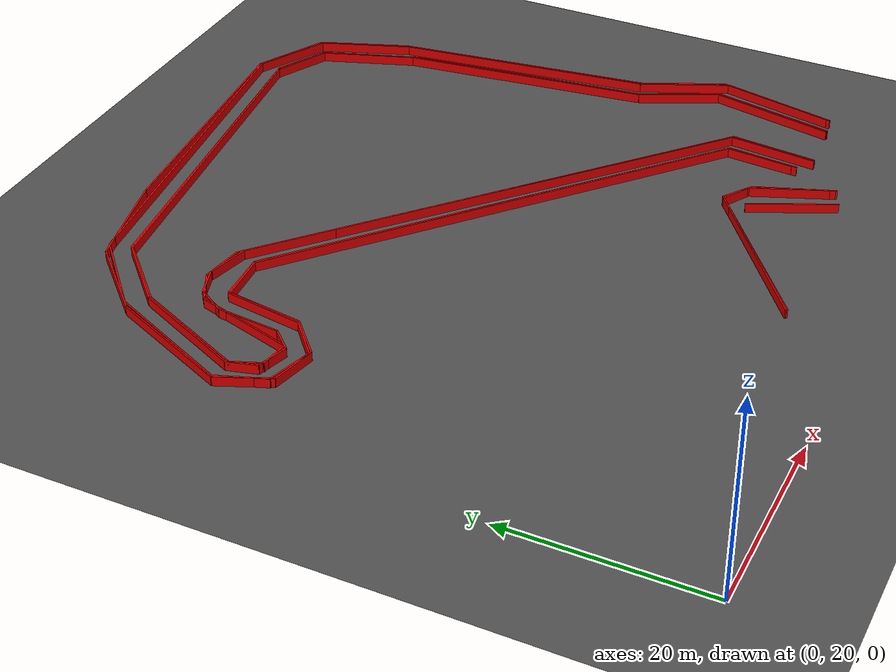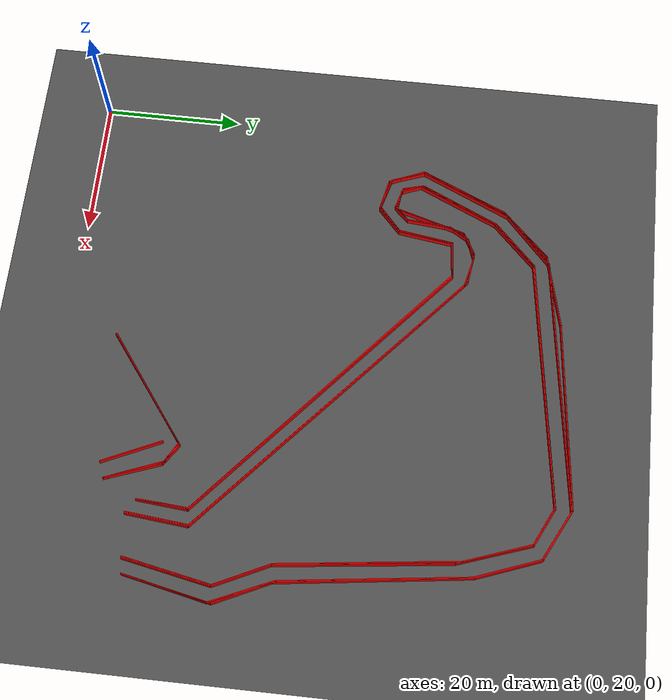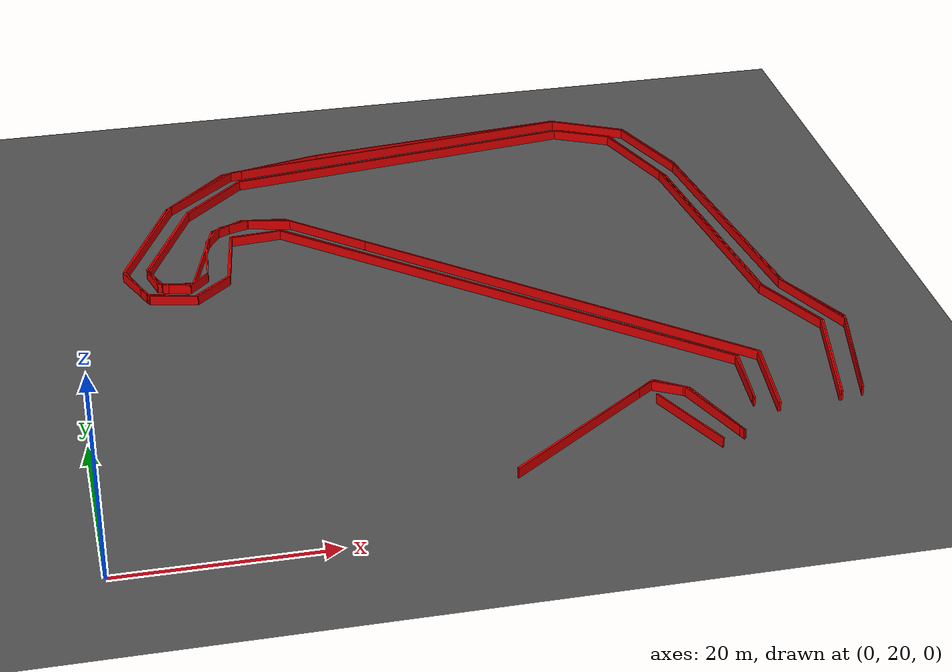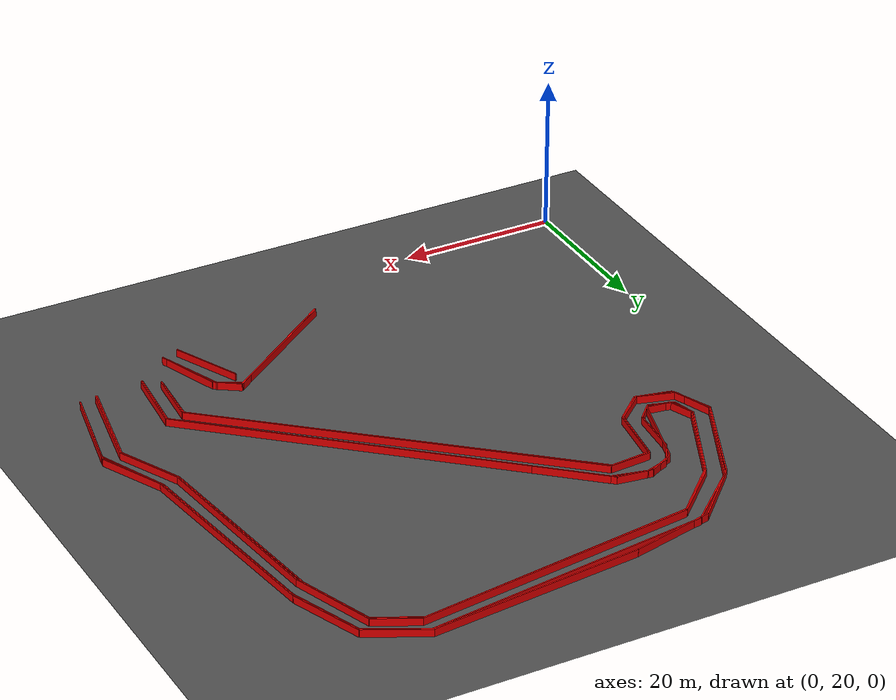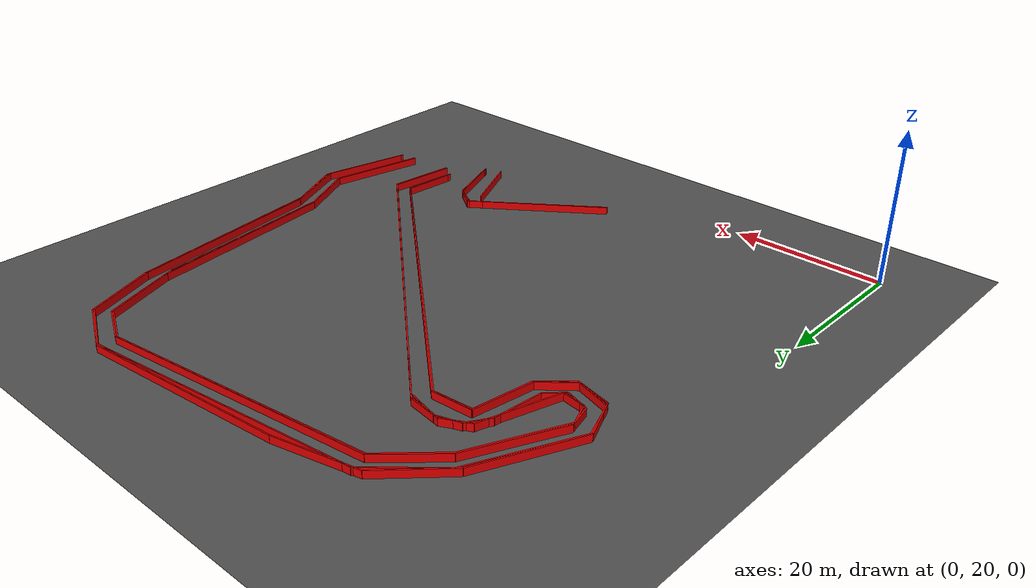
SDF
<sdf version="1.6">
 <world name="track_world">
  <model name="ground_plane">
   <static>true</static>
   <link name="link">
    <collision name="collision">
     <geometry><plane><normal>0 0 1</normal><size>1000 1000</size></plane></geometry>
    </collision>
    <visual name="visual">
     <geometry><plane><normal>0 0 1</normal><size>1000 1000</size></plane></geometry>
     <material><ambient>0.3 0.3 0.3 1</ambient><diffuse>0.3 0.3 0.3 1</diffuse></material>
    </visual>
   </link>
  </model>
  <model name="wall_0">
   <static>true</static>
   <pose>42.31821860208427 92.56603608975206 0.5 0 0 -3.037451008844692</pose>
   <link name="link">
    <visual name="visual">
     <geometry><box><size>27.449195399209803 0.15 1.0</size></box></geometry>
     <material><ambient>1 0 0 1</ambient><diffuse>1 0 0 1</diffuse></material>
    </visual>
    <collision name="collision">
     <geometry><box><size>27.449195399209803 0.15 1.0</size></box></geometry>
    </collision>
   </link>
  </model>
  <model name="wall_1">
   <static>true</static>
   <pose>23.308138602084274 89.86683608975206 0.5 0 0 -2.908497981060588</pose>
   <link name="link">
    <visual name="visual">
     <geometry><box><size>11.017638617417065 0.15 1.0</size></box></geometry>
     <material><ambient>1 0 0 1</ambient><diffuse>1 0 0 1</diffuse></material>
    </visual>
    <collision name="collision">
     <geometry><box><size>11.017638617417065 0.15 1.0</size></box></geometry>
    </collision>
   </link>
  </model>
  <model name="wall_2">
   <static>true</static>
   <pose>14.632138602084279 85.23963608975205 0.5 0 0 -2.350414207748683</pose>
   <link name="link">
    <visual name="visual">
     <geometry><box><size>9.434206574800024 0.15 1.0</size></box></geometry>
     <material><ambient>1 0 0 1</ambient><diffuse>1 0 0 1</diffuse></material>
    </visual>
    <collision name="collision">
     <geometry><box><size>9.434206574800024 0.15 1.0</size></box></geometry>
    </collision>
   </link>
  </model>
  <model name="wall_3">
   <static>true</static>
   <pose>8.539658602084277 75.63819608975206 0.5 0 0 -1.9890206563741262</pose>
   <link name="link">
    <visual name="visual">
     <geometry><box><size>13.671790446141276 0.15 1.0</size></box></geometry>
     <material><ambient>1 0 0 1</ambient><diffuse>1 0 0 1</diffuse></material>
    </visual>
    <collision name="collision">
     <geometry><box><size>13.671790446141276 0.15 1.0</size></box></geometry>
    </collision>
   </link>
  </model>
  <model name="wall_4">
   <static>true</static>
   <pose>6.843018602084275 66.80795608975205 0.5 0 0 -1.1749458854574806</pose>
   <link name="link">
    <visual name="visual">
     <geometry><box><size>5.600101603649705 0.15 1.0</size></box></geometry>
     <material><ambient>1 0 0 1</ambient><diffuse>1 0 0 1</diffuse></material>
    </visual>
    <collision name="collision">
     <geometry><box><size>5.600101603649705 0.15 1.0</size></box></geometry>
    </collision>
   </link>
  </model>
  <model name="wall_5">
   <static>true</static>
   <pose>10.236298602084275 63.72315608975206 0.5 0 0 -0.21336864215180842</pose>
   <link name="link">
    <visual name="visual">
     <geometry><box><size>4.734565069106139 0.15 1.0</size></box></geometry>
     <material><ambient>1 0 0 1</ambient><diffuse>1 0 0 1</diffuse></material>
    </visual>
    <collision name="collision">
     <geometry><box><size>4.734565069106139 0.15 1.0</size></box></geometry>
    </collision>
   </link>
  </model>
  <model name="wall_6">
   <static>true</static>
   <pose>14.323658602084276 64.84139608975207 0.5 0 0 0.739974883975872</pose>
   <link name="link">
    <visual name="visual">
     <geometry><box><size>4.803777500259563 0.15 1.0</size></box></geometry>
     <material><ambient>1 0 0 1</ambient><diffuse>1 0 0 1</diffuse></material>
    </visual>
    <collision name="collision">
     <geometry><box><size>4.803777500259563 0.15 1.0</size></box></geometry>
    </collision>
   </link>
  </model>
  <model name="wall_7">
   <static>true</static>
   <pose>16.675818602084274 70.43259608975205 0.5 0 0 1.4261818875749566</pose>
   <link name="link">
    <visual name="visual">
     <geometry><box><size>8.027151071806234 0.15 1.0</size></box></geometry>
     <material><ambient>1 0 0 1</ambient><diffuse>1 0 0 1</diffuse></material>
    </visual>
    <collision name="collision">
     <geometry><box><size>8.027151071806234 0.15 1.0</size></box></geometry>
    </collision>
   </link>
  </model>
  <model name="wall_8">
   <static>true</static>
   <pose>19.837738602084272 74.63563608975207 0.5 0 0 0.08931399299322305</pose>
   <link name="link">
    <visual name="visual">
     <geometry><box><size>5.187717432551623 0.15 1.0</size></box></geometry>
     <material><ambient>1 0 0 1</ambient><diffuse>1 0 0 1</diffuse></material>
    </visual>
    <collision name="collision">
     <geometry><box><size>5.187717432551623 0.15 1.0</size></box></geometry>
    </collision>
   </link>
  </model>
  <model name="wall_9">
   <static>true</static>
   <pose>41.81693860208427 58.09339608975206 0.5 0 0 -0.7130300929492385</pose>
   <link name="link">
    <visual name="visual">
     <geometry><box><size>51.285321862006484 0.15 1.0</size></box></geometry>
     <material><ambient>1 0 0 1</ambient><diffuse>1 0 0 1</diffuse></material>
    </visual>
    <collision name="collision">
     <geometry><box><size>51.285321862006484 0.15 1.0</size></box></geometry>
    </collision>
   </link>
  </model>
  <model name="wall_10">
   <static>true</static>
   <pose>60.94269860208427 37.84939608975206 0.5 0 0 -1.6484178355322898</pose>
   <link name="link">
    <visual name="visual">
     <geometry><box><size>6.9617621236006 0.15 1.0</size></box></geometry>
     <material><ambient>1 0 0 1</ambient><diffuse>1 0 0 1</diffuse></material>
    </visual>
    <collision name="collision"><geometry><box><size>6.9617621236006 0.15 1.0</size></box></geometry></collision>
   </link>
  </model>
  <model name="wall_12">
   <static>true</static>
   <pose>56.70109860208427 32.87515608975206 0.5 0 0 1.9219501693955425</pose>
   <link name="link">
    <visual name="visual">
     <geometry><box><size>8.295330626804462 0.15 1.0</size></box></geometry>
     <material><ambient>1 0 0 1</ambient><diffuse>1 0 0 1</diffuse></material>
    </visual>
    <collision name="collision">
     <geometry><box><size>8.295330626804462 0.15 1.0</size></box></geometry>
    </collision>
   </link>
  </model>
  <model name="wall_13">
   <static>true</static>
   <pose>53.809098602084276 37.77227608975206 0.5 0 0 2.5415424401880418</pose>
   <link name="link">
    <visual name="visual">
     <geometry><box><size>3.5508714603601135 0.15 1.0</size></box></geometry>
     <material><ambient>1 0 0 1</ambient><diffuse>1 0 0 1</diffuse></material>
    </visual>
    <collision name="collision">
     <geometry><box><size>3.5508714603601135 0.15 1.0</size></box></geometry>
    </collision>
   </link>
  </model>
  <model name="wall_14">
   <static>true</static>
   <pose>44.55469860208427 33.02939608975206 0.5 0 0 -2.506059503658031</pose>
   <link name="link">
    <visual name="visual">
     <geometry><box><size>19.357734492238496 0.15 1.0</size></box></geometry>
     <material><ambient>1 0 0 1</ambient><diffuse>1 0 0 1</diffuse></material>
    </visual>
    <collision name="collision">
     <geometry><box><size>19.357734492238496 0.15 1.0</size></box></geometry>
    </collision>
   </link>
  </model>
  <model name="wall_31">
   <static>true</static>
   <pose>72.47213860208427 40.04731608975206 0.5 0 0 1.3601325468103365</pose>
   <link name="link">
    <visual name="visual">
     <geometry><box><size>12.539294615439891 0.15 1.0</size></box></geometry>
     <material><ambient>1 0 0 1</ambient><diffuse>1 0 0 1</diffuse></material>
    </visual>
    <collision name="collision">
     <geometry><box><size>12.539294615439891 0.15 1.0</size></box></geometry>
    </collision>
   </link>
  </model>
  <model name="wall_32">
   <static>true</static>
   <pose>71.93229860208427 50.11147608975206 0.5 0 0 2.0106389096106305</pose>
   <link name="link">
    <visual name="visual">
     <geometry><box><size>8.693719505206039 0.15 1.0</size></box></geometry>
     <material><ambient>1 0 0 1</ambient><diffuse>1 0 0 1</diffuse></material>
    </visual>
    <collision name="collision">
     <geometry><box><size>8.693719505206039 0.15 1.0</size></box></geometry>
    </collision>
   </link>
  </model>
  <model name="wall_33">
   <static>true</static>
   <pose>68.34621860208428 67.61771608975207 0.5 0 0 1.697947539150035</pose>
   <link name="link">
    <visual name="visual">
     <geometry><box><size>27.36717052049043 0.15 1.0</size></box></geometry>
     <material><ambient>1 0 0 1</ambient><diffuse>1 0 0 1</diffuse></material>
    </visual>
    <collision name="collision">
     <geometry><box><size>27.36717052049043 0.15 1.0</size></box></geometry>
    </collision>
   </link>
  </model>
  <model name="wall_34">
   <static>true</static>
   <pose>64.91437860208427 85.74091608975206 0.5 0 0 1.9277082631465672</pose>
   <link name="link">
    <visual name="visual">
     <geometry><box><size>9.712222257753359 0.15 1.0</size></box></geometry>
     <material><ambient>1 0 0 1</ambient><diffuse>1 0 0 1</diffuse></material>
    </visual>
    <collision name="collision">
     <geometry><box><size>9.712222257753359 0.15 1.0</size></box></geometry>
    </collision>
   </link>
  </model>
  <model name="wall_35">
   <static>true</static>
   <pose>59.593098602084275 92.14187608975206 0.5 0 0 2.6694706711860157</pose>
   <link name="link">
    <visual name="visual">
     <geometry><box><size>8.13972282181648 0.15 1.0</size></box></geometry>
     <material><ambient>1 0 0 1</ambient><diffuse>1 0 0 1</diffuse></material>
    </visual>
    <collision name="collision"><geometry><box><size>8.13972282181648 0.15 1.0</size></box></geometry></collision>
   </link>
  </model>
  <model name="wall_36">
   <static>true</static>
   <pose>59.59309860208427 91.98763608975206 0.5 0 0 -0.4808872801953336</pose>
   <link name="link">
    <visual name="visual">
     <geometry><box><size>8.002663287881091 0.15 1.0</size></box></geometry>
     <material><ambient>1 0 0 1</ambient><diffuse>1 0 0 1</diffuse></material>
    </visual>
    <collision name="collision">
     <geometry><box><size>8.002663287881091 0.15 1.0</size></box></geometry>
    </collision>
   </link>
  </model>
  <model name="wall_37">
   <static>true</static>
   <pose>64.83725860208426 85.54811608975206 0.5 0 0 -1.2166381699386704</pose>
   <link name="link">
    <visual name="visual">
     <geometry><box><size>9.784519270602948 0.15 1.0</size></box></geometry>
     <material><ambient>1 0 0 1</ambient><diffuse>1 0 0 1</diffuse></material>
    </visual>
    <collision name="collision">
     <geometry><box><size>9.784519270602948 0.15 1.0</size></box></geometry>
    </collision>
   </link>
  </model>
  <model name="wall_38">
   <static>true</static>
   <pose>68.19197860208426 67.69483608975204 0.5 0 0 -1.4464413322481353</pose>
   <link name="link">
    <visual name="visual">
     <geometry><box><size>26.735736654597705 0.15 1.0</size></box></geometry>
     <material><ambient>1 0 0 1</ambient><diffuse>1 0 0 1</diffuse></material>
    </visual>
    <collision name="collision">
     <geometry><box><size>26.735736654597705 0.15 1.0</size></box></geometry>
    </collision>
   </link>
  </model>
  <model name="wall_39">
   <static>true</static>
   <pose>71.77805860208427 50.03435608975206 0.5 0 0 -1.1574659222555665</pose>
   <link name="link">
    <visual name="visual">
     <geometry><box><size>9.60012360453761 0.15 1.0</size></box></geometry>
     <material><ambient>1 0 0 1</ambient><diffuse>1 0 0 1</diffuse></material>
    </visual>
    <collision name="collision"><geometry><box><size>9.60012360453761 0.15 1.0</size></box></geometry></collision>
   </link>
  </model>
  <model name="wall_40">
   <static>true</static>
   <pose>72.39501860208428 39.58459608975206 0.5 0 0 -1.7840635696365683</pose>
   <link name="link">
    <visual name="visual">
     <geometry><box><size>12.388506487547236 0.15 1.0</size></box></geometry>
     <material><ambient>1 0 0 1</ambient><diffuse>1 0 0 1</diffuse></material>
    </visual>
    <collision name="collision">
     <geometry><box><size>12.388506487547236 0.15 1.0</size></box></geometry>
    </collision>
   </link>
  </model>
  <model name="wall_58">
   <static>true</static>
   <pose>44.43901860208427 32.87515608975206 0.5 0 0 0.6426966037375662</pose>
   <link name="link">
    <visual name="visual">
     <geometry><box><size>19.172038204343316 0.15 1.0</size></box></geometry>
     <material><ambient>1 0 0 1</ambient><diffuse>1 0 0 1</diffuse></material>
    </visual>
    <collision name="collision">
     <geometry><box><size>19.172038204343316 0.15 1.0</size></box></geometry>
    </collision>
   </link>
  </model>
  <model name="wall_59">
   <static>true</static>
   <pose>53.53917860208427 37.81083608975206 0.5 0 0 -0.5162306706117454</pose>
   <link name="link">
    <visual name="visual">
     <geometry><box><size>3.2810005888448144 0.15 1.0</size></box></geometry>
     <material><ambient>1 0 0 1</ambient><diffuse>1 0 0 1</diffuse></material>
    </visual>
    <collision name="collision">
     <geometry><box><size>3.2810005888448144 0.15 1.0</size></box></geometry>
    </collision>
   </link>
  </model>
  <model name="wall_60">
   <static>true</static>
   <pose>56.585418602084275 32.913716089752064 0.5 0 0 -1.1935472671525371</pose>
   <link name="link">
    <visual name="visual">
     <geometry><box><size>8.793032878364547 0.15 1.0</size></box></geometry>
     <material><ambient>1 0 0 1</ambient><diffuse>1 0 0 1</diffuse></material>
    </visual>
    <collision name="collision">
     <geometry><box><size>8.793032878364547 0.15 1.0</size></box></geometry>
    </collision>
   </link>
  </model>
  <model name="wall_62">
   <static>true</static>
   <pose>61.01981860208427 37.540916089752066 0.5 0 0 1.4773195456363073</pose>
   <link name="link">
    <visual name="visual">
     <geometry><box><size>7.435983824404139 0.15 1.0</size></box></geometry>
     <material><ambient>1 0 0 1</ambient><diffuse>1 0 0 1</diffuse></material>
    </visual>
    <collision name="collision">
     <geometry><box><size>7.435983824404139 0.15 1.0</size></box></geometry>
    </collision>
   </link>
  </model>
  <model name="wall_63">
   <static>true</static>
   <pose>41.97117860208427 58.09339608975206 0.5 0 0 2.4262922171737</pose>
   <link name="link">
    <visual name="visual">
     <geometry><box><size>51.38634710429609 0.15 1.0</size></box></geometry>
     <material><ambient>1 0 0 1</ambient><diffuse>1 0 0 1</diffuse></material>
    </visual>
    <collision name="collision">
     <geometry><box><size>51.38634710429609 0.15 1.0</size></box></geometry>
    </collision>
   </link>
  </model>
  <model name="wall_64">
   <static>true</static>
   <pose>19.876298602084276 74.75131608975207 0.5 0 0 -3.0702851888045033</pose>
   <link name="link">
    <visual name="visual">
     <geometry><box><size>5.412153907641573 0.15 1.0</size></box></geometry>
     <material><ambient>1 0 0 1</ambient><diffuse>1 0 0 1</diffuse></material>
    </visual>
    <collision name="collision">
     <geometry><box><size>5.412153907641573 0.15 1.0</size></box></geometry>
    </collision>
   </link>
  </model>
  <model name="wall_65">
   <static>true</static>
   <pose>16.560138602084276 70.50971608975206 0.5 0 0 -1.7220140169413378</pose>
   <link name="link">
    <visual name="visual">
     <geometry><box><size>8.191073453852066 0.15 1.0</size></box></geometry>
     <material><ambient>1 0 0 1</ambient><diffuse>1 0 0 1</diffuse></material>
    </visual>
    <collision name="collision">
     <geometry><box><size>8.191073453852066 0.15 1.0</size></box></geometry>
    </collision>
   </link>
  </model>
  <model name="wall_66">
   <static>true</static>
   <pose>14.130858602084274 64.87995608975206 0.5 0 0 -2.424270948450343</pose>
   <link name="link">
    <visual name="visual">
     <geometry><box><size>4.809963951632076 0.15 1.0</size></box></geometry>
     <material><ambient>1 0 0 1</ambient><diffuse>1 0 0 1</diffuse></material>
    </visual>
    <collision name="collision">
     <geometry><box><size>4.809963951632076 0.15 1.0</size></box></geometry>
    </collision>
   </link>
  </model>
  <model name="wall_67">
   <static>true</static>
   <pose>10.004938602084277 63.954516089752055 0.5 0 0 2.8654956341943554</pose>
   <link name="link">
    <visual name="visual">
     <geometry><box><size>4.809345664599288 0.15 1.0</size></box></geometry>
     <material><ambient>1 0 0 1</ambient><diffuse>1 0 0 1</diffuse></material>
    </visual>
    <collision name="collision">
     <geometry><box><size>4.809345664599288 0.15 1.0</size></box></geometry>
    </collision>
   </link>
  </model>
  <model name="wall_68">
   <static>true</static>
   <pose>6.804458602084278 67.03931608975205 0.5 0 0 1.9208412150400433</pose>
   <link name="link">
    <visual name="visual">
     <geometry><box><size>5.1722171078948325 0.15 1.0</size></box></geometry>
     <material><ambient>1 0 0 1</ambient><diffuse>1 0 0 1</diffuse></material>
    </visual>
    <collision name="collision">
     <geometry><box><size>5.1722171078948325 0.15 1.0</size></box></geometry>
    </collision>
   </link>
  </model>
  <model name="wall_69">
   <static>true</static>
   <pose>8.886698602084277 75.94667608975206 0.5 0 0 1.141034047698208</pose>
   <link name="link">
    <visual name="visual">
     <geometry><box><size>14.252184963829228 0.15 1.0</size></box></geometry>
     <material><ambient>1 0 0 1</ambient><diffuse>1 0 0 1</diffuse></material>
    </visual>
    <collision name="collision">
     <geometry><box><size>14.252184963829228 0.15 1.0</size></box></geometry>
    </collision>
   </link>
  </model>
  <model name="wall_70">
   <static>true</static>
   <pose>15.480458602084276 85.70235608975206 0.5 0 0 0.7351611385381085</pose>
   <link name="link">
    <visual name="visual">
     <geometry><box><size>9.773571893550493 0.15 1.0</size></box></geometry>
     <material><ambient>1 0 0 1</ambient><diffuse>1 0 0 1</diffuse></material>
    </visual>
    <collision name="collision">
     <geometry><box><size>9.773571893550493 0.15 1.0</size></box></geometry>
    </collision>
   </link>
  </model>
  <model name="wall_71">
   <static>true</static>
   <pose>37.57533860208427 91.40923608975206 0.5 0 0 0.1307733916457459</pose>
   <link name="link">
    <visual name="visual">
     <geometry><box><size>37.25861870633423 0.15 1.0</size></box></geometry>
     <material><ambient>1 0 0 1</ambient><diffuse>1 0 0 1</diffuse></material>
    </visual>
    <collision name="collision">
     <geometry><box><size>37.25861870633423 0.15 1.0</size></box></geometry>
    </collision>
   </link>
  </model>
  <model name="wall_72">
   <static>true</static>
   <pose>37.84525860208427 89.21131608975205 0.5 0 0 -3.010984483643979</pose>
   <link name="link">
    <visual name="visual">
     <geometry><box><size>36.71333219531019 0.15 1.0</size></box></geometry>
     <material><ambient>1 0 0 1</ambient><diffuse>1 0 0 1</diffuse></material>
    </visual>
    <collision name="collision">
     <geometry><box><size>36.71333219531019 0.15 1.0</size></box></geometry>
    </collision>
   </link>
  </model>
  <model name="wall_73">
   <static>true</static>
   <pose>16.521578602084276 83.81291608975205 0.5 0 0 -2.3750601762140167</pose>
   <link name="link">
    <visual name="visual">
     <geometry><box><size>8.672143142730048 0.15 1.0</size></box></geometry>
     <material><ambient>1 0 0 1</ambient><diffuse>1 0 0 1</diffuse></material>
    </visual>
    <collision name="collision">
     <geometry><box><size>8.672143142730048 0.15 1.0</size></box></geometry>
    </collision>
   </link>
  </model>
  <model name="wall_74">
   <static>true</static>
   <pose>10.776138602084277 75.13691608975205 0.5 0 0 -2.004066542858807</pose>
   <link name="link">
    <visual name="visual">
     <geometry><box><size>12.490821453979722 0.15 1.0</size></box></geometry>
     <material><ambient>1 0 0 1</ambient><diffuse>1 0 0 1</diffuse></material>
    </visual>
    <collision name="collision">
     <geometry><box><size>12.490821453979722 0.15 1.0</size></box></geometry>
    </collision>
   </link>
  </model>
  <model name="wall_75">
   <static>true</static>
   <pose>8.539658602084277 67.96475608975206 0.5 0 0 -1.3197936401518613</pose>
   <link name="link">
    <visual name="visual">
     <geometry><box><size>3.1049780067498003 0.15 1.0</size></box></geometry>
     <material><ambient>1 0 0 1</ambient><diffuse>1 0 0 1</diffuse></material>
    </visual>
    <collision name="collision">
     <geometry><box><size>3.1049780067498003 0.15 1.0</size></box></geometry>
    </collision>
   </link>
  </model>
  <model name="wall_76">
   <static>true</static>
   <pose>10.506218602084278 65.99819608975206 0.5 0 0 -0.28473043852271457</pose>
   <link name="link">
    <visual name="visual">
     <geometry><box><size>3.2945678441944444 0.15 1.0</size></box></geometry>
     <material><ambient>1 0 0 1</ambient><diffuse>1 0 0 1</diffuse></material>
    </visual>
    <collision name="collision">
     <geometry><box><size>3.2945678441944444 0.15 1.0</size></box></geometry>
    </collision>
   </link>
  </model>
  <model name="wall_77">
   <static>true</static>
   <pose>13.051178602084278 66.53803608975205 0.5 0 0 0.805003494254655</pose>
   <link name="link">
    <visual name="visual">
     <geometry><box><size>2.7816704000294514 0.15 1.0</size></box></geometry>
     <material><ambient>1 0 0 1</ambient><diffuse>1 0 0 1</diffuse></material>
    </visual>
    <collision name="collision">
     <geometry><box><size>2.7816704000294514 0.15 1.0</size></box></geometry>
    </collision>
   </link>
  </model>
  <model name="wall_78">
   <static>true</static>
   <pose>14.323658602084276 70.77963608975206 0.5 0 0 1.4758446204521405</pose>
   <link name="link">
    <visual name="visual">
     <geometry><box><size>6.5073927288892035 0.15 1.0</size></box></geometry>
     <material><ambient>1 0 0 1</ambient><diffuse>1 0 0 1</diffuse></material>
    </visual>
    <collision name="collision">
     <geometry><box><size>6.5073927288892035 0.15 1.0</size></box></geometry>
    </collision>
   </link>
  </model>
  <model name="wall_79">
   <static>true</static>
   <pose>15.480458602084276 75.40683608975206 0.5 0 0 1.0222469243443655</pose>
   <link name="link">
    <visual name="visual">
     <geometry><box><size>3.253696364444586 0.15 1.0</size></box></geometry>
     <material><ambient>1 0 0 1</ambient><diffuse>1 0 0 1</diffuse></material>
    </visual>
    <collision name="collision">
     <geometry><box><size>3.253696364444586 0.15 1.0</size></box></geometry>
    </collision>
   </link>
  </model>
  <model name="wall_80">
   <static>true</static>
   <pose>17.832618602084278 77.29627608975206 0.5 0 0 0.3217505543966472</pose>
   <link name="link">
    <visual name="visual">
     <geometry><box><size>3.1703730909784165 0.15 1.0</size></box></geometry>
     <material><ambient>1 0 0 1</ambient><diffuse>1 0 0 1</diffuse></material>
    </visual>
    <collision name="collision">
     <geometry><box><size>3.1703730909784165 0.15 1.0</size></box></geometry>
    </collision>
   </link>
  </model>
  <model name="wall_81">
   <static>true</static>
   <pose>21.534378602084278 77.29627608975206 0.5 0 0 -0.2242347511090998</pose>
   <link name="link">
    <visual name="visual">
     <geometry><box><size>4.508717762202468 0.15 1.0</size></box></geometry>
     <material><ambient>1 0 0 1</ambient><diffuse>1 0 0 1</diffuse></material>
    </visual>
    <collision name="collision">
     <geometry><box><size>4.508717762202468 0.15 1.0</size></box></geometry>
    </collision>
   </link>
  </model>
  <model name="wall_82">
   <static>true</static>
   <pose>43.62925860208428 59.25019608975205 0.5 0 0 -0.7226587789430232</pose>
   <link name="link">
    <visual name="visual">
     <geometry><box><size>53.055028952271805 0.15 1.0</size></box></geometry>
     <material><ambient>1 0 0 1</ambient><diffuse>1 0 0 1</diffuse></material>
    </visual>
    <collision name="collision">
     <geometry><box><size>53.055028952271805 0.15 1.0</size></box></geometry>
    </collision>
   </link>
  </model>
  <model name="wall_83">
   <static>true</static>
   <pose>63.06349860208427 37.155316089752056 0.5 0 0 -1.6721428300605654</pose>
   <link name="link">
    <visual name="visual">
     <geometry><box><size>9.147095233963624 0.15 1.0</size></box></geometry>
     <material><ambient>1 0 0 1</ambient><diffuse>1 0 0 1</diffuse></material>
    </visual>
    <collision name="collision">
     <geometry><box><size>9.147095233963624 0.15 1.0</size></box></geometry>
    </collision>
   </link>
  </model>
  <model name="wall_86">
   <static>true</static>
   <pose>53.96333860208427 32.18107608975206 0.5 0 0 2.000874461850759</pose>
   <link name="link">
    <visual name="visual">
     <geometry><box><size>9.248292651424897 0.15 1.0</size></box></geometry>
     <material><ambient>1 0 0 1</ambient><diffuse>1 0 0 1</diffuse></material>
    </visual>
    <collision name="collision">
     <geometry><box><size>9.248292651424897 0.15 1.0</size></box></geometry>
    </collision>
   </link>
  </model>
  <model name="wall_102">
   <static>true</static>
   <pose>70.19709860208428 39.50747608975206 0.5 0 0 1.3734007669450154</pose>
   <link name="link">
    <visual name="visual">
     <geometry><box><size>12.976800701313081 0.15 1.0</size></box></geometry>
     <material><ambient>1 0 0 1</ambient><diffuse>1 0 0 1</diffuse></material>
    </visual>
    <collision name="collision">
     <geometry><box><size>12.976800701313081 0.15 1.0</size></box></geometry>
    </collision>
   </link>
  </model>
  <model name="wall_103">
   <static>true</static>
   <pose>69.61869860208428 49.76443608975206 0.5 0 0 2.014446601822552</pose>
   <link name="link">
    <visual name="visual">
     <geometry><box><size>8.624002404452368 0.15 1.0</size></box></geometry>
     <material><ambient>1 0 0 1</ambient><diffuse>1 0 0 1</diffuse></material>
    </visual>
    <collision name="collision">
     <geometry><box><size>8.624002404452368 0.15 1.0</size></box></geometry>
    </collision>
   </link>
  </model>
  <model name="wall_104">
   <static>true</static>
   <pose>66.34109860208427 66.07531608975205 0.5 0 0 1.6852014009488532</pose>
   <link name="link">
    <visual name="visual">
     <geometry><box><size>24.996042270791573 0.15 1.0</size></box></geometry>
     <material><ambient>1 0 0 1</ambient><diffuse>1 0 0 1</diffuse></material>
    </visual>
    <collision name="collision">
     <geometry><box><size>24.996042270791573 0.15 1.0</size></box></geometry>
    </collision>
   </link>
  </model>
  <model name="wall_105">
   <static>true</static>
   <pose>63.10205860208427 83.73579608975206 0.5 0 0 1.9035354498742714</pose>
   <link name="link">
    <visual name="visual">
     <geometry><box><size>11.09697578405938 0.15 1.0</size></box></geometry>
     <material><ambient>1 0 0 1</ambient><diffuse>1 0 0 1</diffuse></material>
    </visual>
    <collision name="collision">
     <geometry><box><size>11.09697578405938 0.15 1.0</size></box></geometry>
    </collision>
   </link>
  </model>
  <model name="wall_106">
   <static>true</static>
   <pose>58.66765860208427 90.29099608975206 0.5 0 0 2.6779450445889905</pose>
   <link name="link">
    <visual name="visual">
     <geometry><box><size>5.863149122442648 0.15 1.0</size></box></geometry>
     <material><ambient>1 0 0 1</ambient><diffuse>1 0 0 1</diffuse></material>
    </visual>
    <collision name="collision">
     <geometry><box><size>5.863149122442648 0.15 1.0</size></box></geometry>
    </collision>
   </link>
  </model>
  <model name="wall_107">
   <static>true</static>
   <pose>58.47485860208427 90.17531608975206 0.5 0 0 -0.4579979515972243</pose>
   <link name="link">
    <visual name="visual">
     <geometry><box><size>6.1046703359313454 0.15 1.0</size></box></geometry>
     <material><ambient>1 0 0 1</ambient><diffuse>1 0 0 1</diffuse></material>
    </visual>
    <collision name="collision">
     <geometry><box><size>6.1046703359313454 0.15 1.0</size></box></geometry>
    </collision>
   </link>
  </model>
  <model name="wall_108">
   <static>true</static>
   <pose>62.87069860208426 84.12139608975205 0.5 0 0 -1.231932528781121</pose>
   <link name="link">
    <visual name="visual">
     <geometry><box><size>9.975942250995631 0.15 1.0</size></box></geometry>
     <material><ambient>1 0 0 1</ambient><diffuse>1 0 0 1</diffuse></material>
    </visual>
    <collision name="collision">
     <geometry><box><size>9.975942250995631 0.15 1.0</size></box></geometry>
    </collision>
   </link>
  </model>
  <model name="wall_109">
   <static>true</static>
   <pose>66.07117860208426 66.57659608975206 0.5 0 0 -1.4512489875148262</pose>
   <link name="link">
    <visual name="visual">
     <geometry><box><size>25.865569732012478 0.15 1.0</size></box></geometry>
     <material><ambient>1 0 0 1</ambient><diffuse>1 0 0 1</diffuse></material>
    </visual>
    <collision name="collision">
     <geometry><box><size>25.865569732012478 0.15 1.0</size></box></geometry>
    </collision>
   </link>
  </model>
  <model name="wall_110">
   <static>true</static>
   <pose>69.46445860208426 49.84155608975206 0.5 0 0 -1.12714605176724</pose>
   <link name="link">
    <visual name="visual">
     <geometry><box><size>8.624002404452355 0.15 1.0</size></box></geometry>
     <material><ambient>1 0 0 1</ambient><diffuse>1 0 0 1</diffuse></material>
    </visual>
    <collision name="collision">
     <geometry><box><size>8.624002404452355 0.15 1.0</size></box></geometry>
    </collision>
   </link>
  </model>
  <model name="wall_111">
   <static>true</static>
   <pose>70.04285860208427 39.58459608975206 0.5 0 0 -1.7681918866447777</pose>
   <link name="link">
    <visual name="visual">
     <geometry><box><size>12.976800701313095 0.15 1.0</size></box></geometry>
     <material><ambient>1 0 0 1</ambient><diffuse>1 0 0 1</diffuse></material>
    </visual>
    <collision name="collision">
     <geometry><box><size>12.976800701313095 0.15 1.0</size></box></geometry>
    </collision>
   </link>
  </model>
  <model name="wall_130">
   <static>true</static>
   <pose>63.21773860208427 37.11675608975206 0.5 0 0 1.4685896086876438</pose>
   <link name="link">
    <visual name="visual">
     <geometry><box><size>9.070374305132074 0.15 1.0</size></box></geometry>
     <material><ambient>1 0 0 1</ambient><diffuse>1 0 0 1</diffuse></material>
    </visual>
    <collision name="collision">
     <geometry><box><size>9.070374305132074 0.15 1.0</size></box></geometry>
    </collision>
   </link>
  </model>
  <model name="wall_131">
   <static>true</static>
   <pose>43.43645860208427 59.442996089752064 0.5 0 0 2.419937802725032</pose>
   <link name="link">
    <visual name="visual">
     <geometry><box><size>53.932690816550206 0.15 1.0</size></box></geometry>
     <material><ambient>1 0 0 1</ambient><diffuse>1 0 0 1</diffuse></material>
    </visual>
    <collision name="collision">
     <geometry><box><size>53.932690816550206 0.15 1.0</size></box></geometry>
    </collision>
   </link>
  </model>
  <model name="wall_132">
   <static>true</static>
   <pose>20.955978602084276 77.56619608975205 0.5 0 0 3.004526479279611</pose>
   <link name="link">
    <visual name="visual">
     <geometry><box><size>4.5153084947985604 0.15 1.0</size></box></geometry>
     <material><ambient>1 0 0 1</ambient><diffuse>1 0 0 1</diffuse></material>
    </visual>
    <collision name="collision">
     <geometry><box><size>4.5153084947985604 0.15 1.0</size></box></geometry>
    </collision>
   </link>
  </model>
  <model name="wall_133">
   <static>true</static>
   <pose>17.061418602084274 76.98779608975205 0.5 0 0 -2.650429055303537</pose>
   <link name="link">
    <visual name="visual">
     <geometry><box><size>3.7607368537561774 0.15 1.0</size></box></geometry>
     <material><ambient>1 0 0 1</ambient><diffuse>1 0 0 1</diffuse></material>
    </visual>
    <collision name="collision">
     <geometry><box><size>3.7607368537561774 0.15 1.0</size></box></geometry>
    </collision>
   </link>
  </model>
  <model name="wall_134">
   <static>true</static>
   <pose>13.899498602084275 70.97243608975205 0.5 0 0 -1.8560334364446622</pose>
   <link name="link">
    <visual name="visual">
     <geometry><box><size>10.688843128421341 0.15 1.0</size></box></geometry>
     <material><ambient>1 0 0 1</ambient><diffuse>1 0 0 1</diffuse></material>
    </visual>
    <collision name="collision">
     <geometry><box><size>10.688843128421341 0.15 1.0</size></box></geometry>
    </collision>
   </link>
  </model>
  <model name="wall_135">
   <static>true</static>
   <pose>10.891818602084275 66.03675608975206 0.5 0 0 3.014083095374556</pose>
   <link name="link">
    <visual name="visual">
     <geometry><box><size>3.032297205486296 0.15 1.0</size></box></geometry>
     <material><ambient>1 0 0 1</ambient><diffuse>1 0 0 1</diffuse></material>
    </visual>
    <collision name="collision">
     <geometry><box><size>3.032297205486296 0.15 1.0</size></box></geometry>
    </collision>
   </link>
  </model>
  <model name="wall_136">
   <static>true</static>
   <pose>8.809578602084276 67.69483608975204 0.5 0 0 1.9467572806662015</pose>
   <link name="link">
    <visual name="visual">
     <geometry><box><size>3.150613932807381 0.15 1.0</size></box></geometry>
     <material><ambient>1 0 0 1</ambient><diffuse>1 0 0 1</diffuse></material>
    </visual>
    <collision name="collision">
     <geometry><box><size>3.150613932807381 0.15 1.0</size></box></geometry>
    </collision>
   </link>
  </model>
  <model name="wall_137">
   <static>true</static>
   <pose>10.853258602084278 74.90555608975205 0.5 0 0 1.1426529176993507</pose>
   <link name="link">
    <visual name="visual">
     <geometry><box><size>12.630975309927592 0.15 1.0</size></box></geometry>
     <material><ambient>1 0 0 1</ambient><diffuse>1 0 0 1</diffuse></material>
    </visual>
    <collision name="collision">
     <geometry><box><size>12.630975309927592 0.15 1.0</size></box></geometry>
    </collision>
   </link>
  </model>
  <model name="wall_138">
   <static>true</static>
   <pose>16.560138602084276 83.65867608975206 0.5 0 0 0.7727406115633956</pose>
   <link name="link">
    <visual name="visual">
     <geometry><box><size>8.616758096267981 0.15 1.0</size></box></geometry>
     <material><ambient>1 0 0 1</ambient><diffuse>1 0 0 1</diffuse></material>
    </visual>
    <collision name="collision">
     <geometry><box><size>8.616758096267981 0.15 1.0</size></box></geometry>
    </collision>
   </link>
  </model>
  <model name="wall_139">
   <static>true</static>
   <pose>37.69101860208427 89.09563608975206 0.5 0 0 0.1338109774745911</pose>
   <link name="link">
    <visual name="visual">
     <geometry><box><size>36.4177102347086 0.15 1.0</size></box></geometry>
     <material><ambient>1 0 0 1</ambient><diffuse>1 0 0 1</diffuse></material>
    </visual>
    <collision name="collision"><geometry><box><size>36.4177102347086 0.15 1.0</size></box></geometry></collision>
   </link>
  </model>
 </world>
</sdf>
